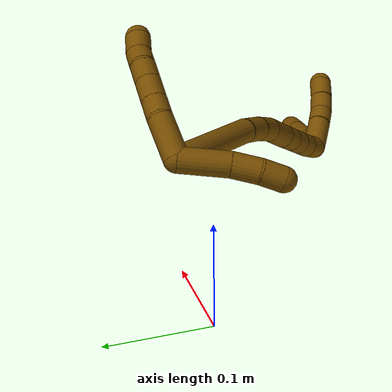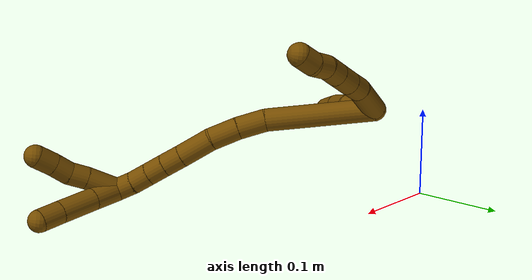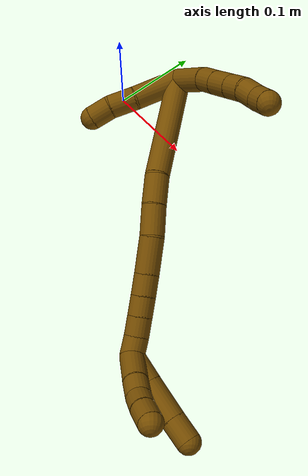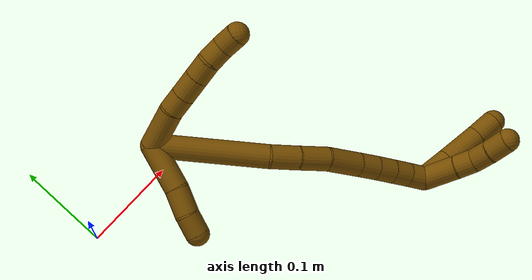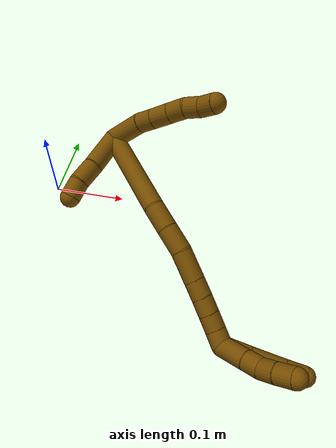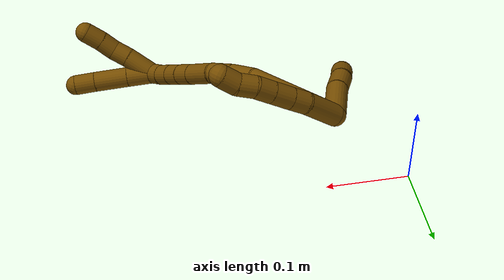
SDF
<sdf version="1.7">
 <world name="default">
  <model name="12">
   <static>0</static>
   <link name="12">
    <collision name="collision-cylinder-e_1_2_8">
     <pose>-0.006753 0.016207 0.01424 -0.849918 -0.303343 0.138115</pose>
     <geometry><cylinder><radius>0.0125</radius><length>0.045213</length></cylinder></geometry>
     <surface>
      <friction><ode><mu>1.16</mu><mu2>1.16</mu2><slip1>0</slip1><slip2>0</slip2></ode></friction>
      <contact><ode><kp>1e+06</kp><kd>1</kd><max_vel>0</max_vel><min_depth>0.001</min_depth></ode></contact>
     </surface>
    </collision>
    <visual name="visual-cylinder-e_1_2_8">
     <pose>-0.006753 0.016207 0.01424 -0.849918 -0.303343 0.138115</pose>
     <geometry><cylinder><radius>0.0125</radius><length>0.045213</length></cylinder></geometry>
     <material><ambient>0.466667 0.301961 0 1</ambient></material>
    </visual>
    <collision name="collision-cylinder-e_2_8_9">
     <pose>-0.015135 0.038795 0.03604 -0.700953 -0.163194 0.059773</pose>
     <geometry><cylinder><radius>0.0125</radius><length>0.020052</length></cylinder></geometry>
     <surface>
      <friction><ode><mu>1.16</mu><mu2>1.16</mu2><slip1>0</slip1><slip2>0</slip2></ode></friction>
      <contact><ode><kp>1e+06</kp><kd>1</kd><max_vel>0</max_vel><min_depth>0.001</min_depth></ode></contact>
     </surface>
    </collision>
    <visual name="visual-cylinder-e_2_8_9">
     <pose>-0.015135 0.038795 0.03604 -0.700953 -0.163194 0.059773</pose>
     <geometry><cylinder><radius>0.0125</radius><length>0.020052</length></cylinder></geometry>
     <material><ambient>0.466667 0.301961 0 1</ambient></material>
    </visual>
    <collision name="collision-cylinder-e_3_9_10">
     <pose>-0.018936 0.052826 0.052553 -0.707172 -0.182411 0.067489</pose>
     <geometry><cylinder><radius>0.0125</radius><length>0.023949</length></cylinder></geometry>
     <surface>
      <friction><ode><mu>1.16</mu><mu2>1.16</mu2><slip1>0</slip1><slip2>0</slip2></ode></friction>
      <contact><ode><kp>1e+06</kp><kd>1</kd><max_vel>0</max_vel><min_depth>0.001</min_depth></ode></contact>
     </surface>
    </collision>
    <visual name="visual-cylinder-e_3_9_10">
     <pose>-0.018936 0.052826 0.052553 -0.707172 -0.182411 0.067489</pose>
     <geometry><cylinder><radius>0.0125</radius><length>0.023949</length></cylinder></geometry>
     <material><ambient>0.466667 0.301961 0 1</ambient></material>
    </visual>
    <collision name="collision-cylinder-e_4_10_11">
     <pose>-0.02295 0.067021 0.069186 -0.705635 -0.180595 0.066656</pose>
     <geometry><cylinder><radius>0.0125</radius><length>0.020516</length></cylinder></geometry>
     <surface>
      <friction><ode><mu>1.16</mu><mu2>1.16</mu2><slip1>0</slip1><slip2>0</slip2></ode></friction>
      <contact><ode><kp>1e+06</kp><kd>1</kd><max_vel>0</max_vel><min_depth>0.001</min_depth></ode></contact>
     </surface>
    </collision>
    <visual name="visual-cylinder-e_4_10_11">
     <pose>-0.02295 0.067021 0.069186 -0.705635 -0.180595 0.066656</pose>
     <geometry><cylinder><radius>0.0125</radius><length>0.020516</length></cylinder></geometry>
     <material><ambient>0.466667 0.301961 0 1</ambient></material>
    </visual>
    <collision name="collision-cylinder-e_5_11_12">
     <pose>-0.02446 0.079138 0.085207 -0.589113 0.033178 -0.010067</pose>
     <geometry><cylinder><radius>0.0125</radius><length>0.020071</length></cylinder></geometry>
     <surface>
      <friction><ode><mu>1.16</mu><mu2>1.16</mu2><slip1>0</slip1><slip2>0</slip2></ode></friction>
      <contact><ode><kp>1e+06</kp><kd>1</kd><max_vel>0</max_vel><min_depth>0.001</min_depth></ode></contact>
     </surface>
    </collision>
    <visual name="visual-cylinder-e_5_11_12">
     <pose>-0.02446 0.079138 0.085207 -0.589113 0.033178 -0.010067</pose>
     <geometry><cylinder><radius>0.0125</radius><length>0.020071</length></cylinder></geometry>
     <material><ambient>0.466667 0.301961 0 1</ambient></material>
    </visual>
    <collision name="collision-cylinder-e_6_12_6">
     <pose>-0.026908 0.089533 0.101973 -0.519751 -0.278921 0.074612</pose>
     <geometry><cylinder><radius>0.0125</radius><length>0.020199</length></cylinder></geometry>
     <surface>
      <friction><ode><mu>1.16</mu><mu2>1.16</mu2><slip1>0</slip1><slip2>0</slip2></ode></friction>
      <contact><ode><kp>1e+06</kp><kd>1</kd><max_vel>0</max_vel><min_depth>0.001</min_depth></ode></contact>
     </surface>
    </collision>
    <visual name="visual-cylinder-e_6_12_6">
     <pose>-0.026908 0.089533 0.101973 -0.519751 -0.278921 0.074612</pose>
     <geometry><cylinder><radius>0.0125</radius><length>0.020199</length></cylinder></geometry>
     <material><ambient>0.466667 0.301961 0 1</ambient></material>
    </visual>
    <collision name="collision-cylinder-e_1_2_13">
     <pose>-0.004992 -0.023096 0.007778 1.24595 -0.202048 -0.145392</pose>
     <geometry><cylinder><radius>0.0125</radius><length>0.049752</length></cylinder></geometry>
     <surface>
      <friction><ode><mu>1.16</mu><mu2>1.16</mu2><slip1>0</slip1><slip2>0</slip2></ode></friction>
      <contact><ode><kp>1e+06</kp><kd>1</kd><max_vel>0</max_vel><min_depth>0.001</min_depth></ode></contact>
     </surface>
    </collision>
    <visual name="visual-cylinder-e_1_2_13">
     <pose>-0.004992 -0.023096 0.007778 1.24595 -0.202048 -0.145392</pose>
     <geometry><cylinder><radius>0.0125</radius><length>0.049752</length></cylinder></geometry>
     <material><ambient>0.466667 0.301961 0 1</ambient></material>
    </visual>
    <collision name="collision-cylinder-e_2_13_14">
     <pose>-0.01189 -0.059647 0.018008 1.39058 -0.138425 -0.115539</pose>
     <geometry><cylinder><radius>0.0125</radius><length>0.027619</length></cylinder></geometry>
     <surface>
      <friction><ode><mu>1.16</mu><mu2>1.16</mu2><slip1>0</slip1><slip2>0</slip2></ode></friction>
      <contact><ode><kp>1e+06</kp><kd>1</kd><max_vel>0</max_vel><min_depth>0.001</min_depth></ode></contact>
     </surface>
    </collision>
    <visual name="visual-cylinder-e_2_13_14">
     <pose>-0.01189 -0.059647 0.018008 1.39058 -0.138425 -0.115539</pose>
     <geometry><cylinder><radius>0.0125</radius><length>0.027619</length></cylinder></geometry>
     <material><ambient>0.466667 0.301961 0 1</ambient></material>
    </visual>
    <collision name="collision-cylinder-e_3_14_5">
     <pose>-0.013245 -0.084042 0.023294 1.31724 0.048647 0.03765</pose>
     <geometry><cylinder><radius>0.0125</radius><length>0.022629</length></cylinder></geometry>
     <surface>
      <friction><ode><mu>1.16</mu><mu2>1.16</mu2><slip1>0</slip1><slip2>0</slip2></ode></friction>
      <contact><ode><kp>1e+06</kp><kd>1</kd><max_vel>0</max_vel><min_depth>0.001</min_depth></ode></contact>
     </surface>
    </collision>
    <visual name="visual-cylinder-e_3_14_5">
     <pose>-0.013245 -0.084042 0.023294 1.31724 0.048647 0.03765</pose>
     <geometry><cylinder><radius>0.0125</radius><length>0.022629</length></cylinder></geometry>
     <material><ambient>0.466667 0.301961 0 1</ambient></material>
    </visual>
    <collision name="collision-cylinder-e_1_2_15">
     <pose>0.007992 -0.018708 0.055223 0.326643 0.13622 0.022481</pose>
     <geometry><cylinder><radius>0.0125</radius><length>0.117702</length></cylinder></geometry>
     <surface>
      <friction><ode><mu>1.16</mu><mu2>1.16</mu2><slip1>0</slip1><slip2>0</slip2></ode></friction>
      <contact><ode><kp>1e+06</kp><kd>1</kd><max_vel>0</max_vel><min_depth>0.001</min_depth></ode></contact>
     </surface>
    </collision>
    <visual name="visual-cylinder-e_1_2_15">
     <pose>0.007992 -0.018708 0.055223 0.326643 0.13622 0.022481</pose>
     <geometry><cylinder><radius>0.0125</radius><length>0.117702</length></cylinder></geometry>
     <material><ambient>0.466667 0.301961 0 1</ambient></material>
    </visual>
    <collision name="collision-cylinder-e_2_15_16">
     <pose>0.021052 -0.042011 0.124413 0.317827 0.331939 0.053679</pose>
     <geometry><cylinder><radius>0.0125</radius><length>0.031104</length></cylinder></geometry>
     <surface>
      <friction><ode><mu>1.16</mu><mu2>1.16</mu2><slip1>0</slip1><slip2>0</slip2></ode></friction>
      <contact><ode><kp>1e+06</kp><kd>1</kd><max_vel>0</max_vel><min_depth>0.001</min_depth></ode></contact>
     </surface>
    </collision>
    <visual name="visual-cylinder-e_2_15_16">
     <pose>0.021052 -0.042011 0.124413 0.317827 0.331939 0.053679</pose>
     <geometry><cylinder><radius>0.0125</radius><length>0.031104</length></cylinder></geometry>
     <material><ambient>0.466667 0.301961 0 1</ambient></material>
    </visual>
    <collision name="collision-cylinder-e_3_16_17">
     <pose>0.032702 -0.051178 0.151934 0.325323 0.431253 0.07186</pose>
     <geometry><cylinder><radius>0.0125</radius><length>0.031493</length></cylinder></geometry>
     <surface>
      <friction><ode><mu>1.16</mu><mu2>1.16</mu2><slip1>0</slip1><slip2>0</slip2></ode></friction>
      <contact><ode><kp>1e+06</kp><kd>1</kd><max_vel>0</max_vel><min_depth>0.001</min_depth></ode></contact>
     </surface>
    </collision>
    <visual name="visual-cylinder-e_3_16_17">
     <pose>0.032702 -0.051178 0.151934 0.325323 0.431253 0.07186</pose>
     <geometry><cylinder><radius>0.0125</radius><length>0.031493</length></cylinder></geometry>
     <material><ambient>0.466667 0.301961 0 1</ambient></material>
    </visual>
    <collision name="collision-cylinder-e_4_17_18">
     <pose>0.04877 -0.063407 0.179713 0.493811 0.53096 0.136849</pose>
     <geometry><cylinder><radius>0.0125</radius><length>0.037467</length></cylinder></geometry>
     <surface>
      <friction><ode><mu>1.16</mu><mu2>1.16</mu2><slip1>0</slip1><slip2>0</slip2></ode></friction>
      <contact><ode><kp>1e+06</kp><kd>1</kd><max_vel>0</max_vel><min_depth>0.001</min_depth></ode></contact>
     </surface>
    </collision>
    <visual name="visual-cylinder-e_4_17_18">
     <pose>0.04877 -0.063407 0.179713 0.493811 0.53096 0.136849</pose>
     <geometry><cylinder><radius>0.0125</radius><length>0.037467</length></cylinder></geometry>
     <material><ambient>0.466667 0.301961 0 1</ambient></material>
    </visual>
    <collision name="collision-cylinder-e_5_18_19">
     <pose>0.063576 -0.07559 0.202295 0.496322 0.51025 0.131977</pose>
     <geometry><cylinder><radius>0.0125</radius><length>0.021785</length></cylinder></geometry>
     <surface>
      <friction><ode><mu>1.16</mu><mu2>1.16</mu2><slip1>0</slip1><slip2>0</slip2></ode></friction>
      <contact><ode><kp>1e+06</kp><kd>1</kd><max_vel>0</max_vel><min_depth>0.001</min_depth></ode></contact>
     </surface>
    </collision>
    <visual name="visual-cylinder-e_5_18_19">
     <pose>0.063576 -0.07559 0.202295 0.496322 0.51025 0.131977</pose>
     <geometry><cylinder><radius>0.0125</radius><length>0.021785</length></cylinder></geometry>
     <material><ambient>0.466667 0.301961 0 1</ambient></material>
    </visual>
    <collision name="collision-cylinder-e_6_19_20">
     <pose>0.073893 -0.08451 0.218362 0.518049 0.512913 0.138747</pose>
     <geometry><cylinder><radius>0.0125</radius><length>0.020367</length></cylinder></geometry>
     <surface>
      <friction><ode><mu>1.16</mu><mu2>1.16</mu2><slip1>0</slip1><slip2>0</slip2></ode></friction>
      <contact><ode><kp>1e+06</kp><kd>1</kd><max_vel>0</max_vel><min_depth>0.001</min_depth></ode></contact>
     </surface>
    </collision>
    <visual name="visual-cylinder-e_6_19_20">
     <pose>0.073893 -0.08451 0.218362 0.518049 0.512913 0.138747</pose>
     <geometry><cylinder><radius>0.0125</radius><length>0.020367</length></cylinder></geometry>
     <material><ambient>0.466667 0.301961 0 1</ambient></material>
    </visual>
    <collision name="collision-cylinder-e_7_20_21">
     <pose>0.083799 -0.09325 0.233673 0.519374 0.510956 0.138564</pose>
     <geometry><cylinder><radius>0.0125</radius><length>0.020078</length></cylinder></geometry>
     <surface>
      <friction><ode><mu>1.16</mu><mu2>1.16</mu2><slip1>0</slip1><slip2>0</slip2></ode></friction>
      <contact><ode><kp>1e+06</kp><kd>1</kd><max_vel>0</max_vel><min_depth>0.001</min_depth></ode></contact>
     </surface>
    </collision>
    <visual name="visual-cylinder-e_7_20_21">
     <pose>0.083799 -0.09325 0.233673 0.519374 0.510956 0.138564</pose>
     <geometry><cylinder><radius>0.0125</radius><length>0.020078</length></cylinder></geometry>
     <material><ambient>0.466667 0.301961 0 1</ambient></material>
    </visual>
    <collision name="collision-cylinder-e_8_21_1">
     <pose>0.092702 -0.102104 0.249261 0.513875 0.410724 0.10935</pose>
     <geometry><cylinder><radius>0.0125</radius><length>0.020004</length></cylinder></geometry>
     <surface>
      <friction><ode><mu>1.16</mu><mu2>1.16</mu2><slip1>0</slip1><slip2>0</slip2></ode></friction>
      <contact><ode><kp>1e+06</kp><kd>1</kd><max_vel>0</max_vel><min_depth>0.001</min_depth></ode></contact>
     </surface>
    </collision>
    <visual name="visual-cylinder-e_8_21_1">
     <pose>0.092702 -0.102104 0.249261 0.513875 0.410724 0.10935</pose>
     <geometry><cylinder><radius>0.0125</radius><length>0.020004</length></cylinder></geometry>
     <material><ambient>0.466667 0.301961 0 1</ambient></material>
    </visual>
    <collision name="collision-cylinder-e_1_1_22">
     <pose>0.103465 -0.100882 0.270706 -0.402454 0.433434 -0.089765</pose>
     <geometry><cylinder><radius>0.0125</radius><length>0.032238</length></cylinder></geometry>
     <surface>
      <friction><ode><mu>1.16</mu><mu2>1.16</mu2><slip1>0</slip1><slip2>0</slip2></ode></friction>
      <contact><ode><kp>1e+06</kp><kd>1</kd><max_vel>0</max_vel><min_depth>0.001</min_depth></ode></contact>
     </surface>
    </collision>
    <visual name="visual-cylinder-e_1_1_22">
     <pose>0.103465 -0.100882 0.270706 -0.402454 0.433434 -0.089765</pose>
     <geometry><cylinder><radius>0.0125</radius><length>0.032238</length></cylinder></geometry>
     <material><ambient>0.466667 0.301961 0 1</ambient></material>
    </visual>
    <collision name="collision-cylinder-e_2_22_23">
     <pose>0.119151 -0.087416 0.301584 -0.417973 0.437533 -0.094233</pose>
     <geometry><cylinder><radius>0.0125</radius><length>0.042084</length></cylinder></geometry>
     <surface>
      <friction><ode><mu>1.16</mu><mu2>1.16</mu2><slip1>0</slip1><slip2>0</slip2></ode></friction>
      <contact><ode><kp>1e+06</kp><kd>1</kd><max_vel>0</max_vel><min_depth>0.001</min_depth></ode></contact>
     </surface>
    </collision>
    <visual name="visual-cylinder-e_2_22_23">
     <pose>0.119151 -0.087416 0.301584 -0.417973 0.437533 -0.094233</pose>
     <geometry><cylinder><radius>0.0125</radius><length>0.042084</length></cylinder></geometry>
     <material><ambient>0.466667 0.301961 0 1</ambient></material>
    </visual>
    <collision name="collision-cylinder-e_3_23_4">
     <pose>0.133579 -0.074648 0.32945 -0.44888 0.443783 -0.102915</pose>
     <geometry><cylinder><radius>0.0125</radius><length>0.025679</length></cylinder></geometry>
     <surface>
      <friction><ode><mu>1.16</mu><mu2>1.16</mu2><slip1>0</slip1><slip2>0</slip2></ode></friction>
      <contact><ode><kp>1e+06</kp><kd>1</kd><max_vel>0</max_vel><min_depth>0.001</min_depth></ode></contact>
     </surface>
    </collision>
    <visual name="visual-cylinder-e_3_23_4">
     <pose>0.133579 -0.074648 0.32945 -0.44888 0.443783 -0.102915</pose>
     <geometry><cylinder><radius>0.0125</radius><length>0.025679</length></cylinder></geometry>
     <material><ambient>0.466667 0.301961 0 1</ambient></material>
    </visual>
    <collision name="collision-cylinder-e_1_1_24">
     <pose>0.091973 -0.103247 0.274933 -0.187999 -0.256534 0.024318</pose>
     <geometry><cylinder><radius>0.0125</radius><length>0.037226</length></cylinder></geometry>
     <surface>
      <friction><ode><mu>1.16</mu><mu2>1.16</mu2><slip1>0</slip1><slip2>0</slip2></ode></friction>
      <contact><ode><kp>1e+06</kp><kd>1</kd><max_vel>0</max_vel><min_depth>0.001</min_depth></ode></contact>
     </surface>
    </collision>
    <visual name="visual-cylinder-e_1_1_24">
     <pose>0.091973 -0.103247 0.274933 -0.187999 -0.256534 0.024318</pose>
     <geometry><cylinder><radius>0.0125</radius><length>0.037226</length></cylinder></geometry>
     <material><ambient>0.466667 0.301961 0 1</ambient></material>
    </visual>
    <collision name="collision-cylinder-e_2_24_25">
     <pose>0.085599 -0.097947 0.302362 -0.196053 -0.164748 0.016238</pose>
     <geometry><cylinder><radius>0.0125</radius><length>0.020138</length></cylinder></geometry>
     <surface>
      <friction><ode><mu>1.16</mu><mu2>1.16</mu2><slip1>0</slip1><slip2>0</slip2></ode></friction>
      <contact><ode><kp>1e+06</kp><kd>1</kd><max_vel>0</max_vel><min_depth>0.001</min_depth></ode></contact>
     </surface>
    </collision>
    <visual name="visual-cylinder-e_2_24_25">
     <pose>0.085599 -0.097947 0.302362 -0.196053 -0.164748 0.016238</pose>
     <geometry><cylinder><radius>0.0125</radius><length>0.020138</length></cylinder></geometry>
     <material><ambient>0.466667 0.301961 0 1</ambient></material>
    </visual>
    <collision name="collision-cylinder-e_3_25_26">
     <pose>0.080214 -0.092457 0.320925 -0.383208 -0.37412 0.073399</pose>
     <geometry><cylinder><radius>0.0125</radius><length>0.020433</length></cylinder></geometry>
     <surface>
      <friction><ode><mu>1.16</mu><mu2>1.16</mu2><slip1>0</slip1><slip2>0</slip2></ode></friction>
      <contact><ode><kp>1e+06</kp><kd>1</kd><max_vel>0</max_vel><min_depth>0.001</min_depth></ode></contact>
     </surface>
    </collision>
    <visual name="visual-cylinder-e_3_25_26">
     <pose>0.080214 -0.092457 0.320925 -0.383208 -0.37412 0.073399</pose>
     <geometry><cylinder><radius>0.0125</radius><length>0.020433</length></cylinder></geometry>
     <material><ambient>0.466667 0.301961 0 1</ambient></material>
    </visual>
    <collision name="collision-cylinder-e_4_26_3">
     <pose>0.073355 -0.084439 0.339418 -0.432181 -0.285402 0.063059</pose>
     <geometry><cylinder><radius>0.0125</radius><length>0.022203</length></cylinder></geometry>
     <surface>
      <friction><ode><mu>1.16</mu><mu2>1.16</mu2><slip1>0</slip1><slip2>0</slip2></ode></friction>
      <contact><ode><kp>1e+06</kp><kd>1</kd><max_vel>0</max_vel><min_depth>0.001</min_depth></ode></contact>
     </surface>
    </collision>
    <visual name="visual-cylinder-e_4_26_3">
     <pose>0.073355 -0.084439 0.339418 -0.432181 -0.285402 0.063059</pose>
     <geometry><cylinder><radius>0.0125</radius><length>0.022203</length></cylinder></geometry>
     <material><ambient>0.466667 0.301961 0 1</ambient></material>
    </visual>
    <collision name="collision-sphere-3">
     <pose>0.070229 -0.079978 0.349091 0 -0 0</pose>
     <geometry><sphere><radius>0.0125</radius></sphere></geometry>
     <surface>
      <friction><ode><mu>1.16</mu><mu2>1.16</mu2><slip1>0</slip1><slip2>0</slip2></ode></friction>
      <contact><ode><kp>1e+06</kp><kd>1</kd><max_vel>0</max_vel><min_depth>0.001</min_depth></ode></contact>
     </surface>
    </collision>
    <visual name="visual-sphere-3">
     <pose>0.070229 -0.079978 0.349091 0 -0 0</pose>
     <geometry><sphere><radius>0.0125</radius></sphere></geometry>
     <material><ambient>0.466667 0.301961 0 1</ambient></material>
    </visual>
    <collision name="collision-sphere-26">
     <pose>0.07648 -0.088901 0.329745 0 -0 0</pose>
     <geometry><sphere><radius>0.0125</radius></sphere></geometry>
     <surface>
      <friction><ode><mu>1.16</mu><mu2>1.16</mu2><slip1>0</slip1><slip2>0</slip2></ode></friction>
      <contact><ode><kp>1e+06</kp><kd>1</kd><max_vel>0</max_vel><min_depth>0.001</min_depth></ode></contact>
     </surface>
    </collision>
    <visual name="visual-sphere-26">
     <pose>0.07648 -0.088901 0.329745 0 -0 0</pose>
     <geometry><sphere><radius>0.0125</radius></sphere></geometry>
     <material><ambient>0.466667 0.301961 0 1</ambient></material>
    </visual>
    <collision name="collision-sphere-25">
     <pose>0.083948 -0.096013 0.312105 0 -0 0</pose>
     <geometry><sphere><radius>0.0125</radius></sphere></geometry>
     <surface>
      <friction><ode><mu>1.16</mu><mu2>1.16</mu2><slip1>0</slip1><slip2>0</slip2></ode></friction>
      <contact><ode><kp>1e+06</kp><kd>1</kd><max_vel>0</max_vel><min_depth>0.001</min_depth></ode></contact>
     </surface>
    </collision>
    <visual name="visual-sphere-25">
     <pose>0.083948 -0.096013 0.312105 0 -0 0</pose>
     <geometry><sphere><radius>0.0125</radius></sphere></geometry>
     <material><ambient>0.466667 0.301961 0 1</ambient></material>
    </visual>
    <collision name="collision-sphere-24">
     <pose>0.08725 -0.099882 0.29262 0 -0 0</pose>
     <geometry><sphere><radius>0.0125</radius></sphere></geometry>
     <surface>
      <friction><ode><mu>1.16</mu><mu2>1.16</mu2><slip1>0</slip1><slip2>0</slip2></ode></friction>
      <contact><ode><kp>1e+06</kp><kd>1</kd><max_vel>0</max_vel><min_depth>0.001</min_depth></ode></contact>
     </surface>
    </collision>
    <visual name="visual-sphere-24">
     <pose>0.08725 -0.099882 0.29262 0 -0 0</pose>
     <geometry><sphere><radius>0.0125</radius></sphere></geometry>
     <material><ambient>0.466667 0.301961 0 1</ambient></material>
    </visual>
    <collision name="collision-sphere-4">
     <pose>0.139092 -0.069616 0.339897 0 -0 0</pose>
     <geometry><sphere><radius>0.0125</radius></sphere></geometry>
     <surface>
      <friction><ode><mu>1.16</mu><mu2>1.16</mu2><slip1>0</slip1><slip2>0</slip2></ode></friction>
      <contact><ode><kp>1e+06</kp><kd>1</kd><max_vel>0</max_vel><min_depth>0.001</min_depth></ode></contact>
     </surface>
    </collision>
    <visual name="visual-sphere-4">
     <pose>0.139092 -0.069616 0.339897 0 -0 0</pose>
     <geometry><sphere><radius>0.0125</radius></sphere></geometry>
     <material><ambient>0.466667 0.301961 0 1</ambient></material>
    </visual>
    <collision name="collision-sphere-23">
     <pose>0.128066 -0.07968 0.319003 0 -0 0</pose>
     <geometry><sphere><radius>0.0125</radius></sphere></geometry>
     <surface>
      <friction><ode><mu>1.16</mu><mu2>1.16</mu2><slip1>0</slip1><slip2>0</slip2></ode></friction>
      <contact><ode><kp>1e+06</kp><kd>1</kd><max_vel>0</max_vel><min_depth>0.001</min_depth></ode></contact>
     </surface>
    </collision>
    <visual name="visual-sphere-23">
     <pose>0.128066 -0.07968 0.319003 0 -0 0</pose>
     <geometry><sphere><radius>0.0125</radius></sphere></geometry>
     <material><ambient>0.466667 0.301961 0 1</ambient></material>
    </visual>
    <collision name="collision-sphere-22">
     <pose>0.110235 -0.095153 0.284166 0 -0 0</pose>
     <geometry><sphere><radius>0.0125</radius></sphere></geometry>
     <surface>
      <friction><ode><mu>1.16</mu><mu2>1.16</mu2><slip1>0</slip1><slip2>0</slip2></ode></friction>
      <contact><ode><kp>1e+06</kp><kd>1</kd><max_vel>0</max_vel><min_depth>0.001</min_depth></ode></contact>
     </surface>
    </collision>
    <visual name="visual-sphere-22">
     <pose>0.110235 -0.095153 0.284166 0 -0 0</pose>
     <geometry><sphere><radius>0.0125</radius></sphere></geometry>
     <material><ambient>0.466667 0.301961 0 1</ambient></material>
    </visual>
    <collision name="collision-sphere-1">
     <pose>0.096696 -0.106612 0.257247 0 -0 0</pose>
     <geometry><sphere><radius>0.0125</radius></sphere></geometry>
     <surface>
      <friction><ode><mu>1.16</mu><mu2>1.16</mu2><slip1>0</slip1><slip2>0</slip2></ode></friction>
      <contact><ode><kp>1e+06</kp><kd>1</kd><max_vel>0</max_vel><min_depth>0.001</min_depth></ode></contact>
     </surface>
    </collision>
    <visual name="visual-sphere-1">
     <pose>0.096696 -0.106612 0.257247 0 -0 0</pose>
     <geometry><sphere><radius>0.0125</radius></sphere></geometry>
     <material><ambient>0.466667 0.301961 0 1</ambient></material>
    </visual>
    <collision name="collision-sphere-21">
     <pose>0.088708 -0.097597 0.241275 0 -0 0</pose>
     <geometry><sphere><radius>0.0125</radius></sphere></geometry>
     <surface>
      <friction><ode><mu>1.16</mu><mu2>1.16</mu2><slip1>0</slip1><slip2>0</slip2></ode></friction>
      <contact><ode><kp>1e+06</kp><kd>1</kd><max_vel>0</max_vel><min_depth>0.001</min_depth></ode></contact>
     </surface>
    </collision>
    <visual name="visual-sphere-21">
     <pose>0.088708 -0.097597 0.241275 0 -0 0</pose>
     <geometry><sphere><radius>0.0125</radius></sphere></geometry>
     <material><ambient>0.466667 0.301961 0 1</ambient></material>
    </visual>
    <collision name="collision-sphere-12">
     <pose>-0.024127 0.084711 0.093546 0 -0 0</pose>
     <geometry><sphere><radius>0.0125</radius></sphere></geometry>
     <surface>
      <friction><ode><mu>1.16</mu><mu2>1.16</mu2><slip1>0</slip1><slip2>0</slip2></ode></friction>
      <contact><ode><kp>1e+06</kp><kd>1</kd><max_vel>0</max_vel><min_depth>0.001</min_depth></ode></contact>
     </surface>
    </collision>
    <visual name="visual-sphere-12">
     <pose>-0.024127 0.084711 0.093546 0 -0 0</pose>
     <geometry><sphere><radius>0.0125</radius></sphere></geometry>
     <material><ambient>0.466667 0.301961 0 1</ambient></material>
    </visual>
    <collision name="collision-sphere-11">
     <pose>-0.024793 0.073565 0.076868 0 -0 0</pose>
     <geometry><sphere><radius>0.0125</radius></sphere></geometry>
     <surface>
      <friction><ode><mu>1.16</mu><mu2>1.16</mu2><slip1>0</slip1><slip2>0</slip2></ode></friction>
      <contact><ode><kp>1e+06</kp><kd>1</kd><max_vel>0</max_vel><min_depth>0.001</min_depth></ode></contact>
     </surface>
    </collision>
    <visual name="visual-sphere-11">
     <pose>-0.024793 0.073565 0.076868 0 -0 0</pose>
     <geometry><sphere><radius>0.0125</radius></sphere></geometry>
     <material><ambient>0.466667 0.301961 0 1</ambient></material>
    </visual>
    <collision name="collision-sphere-10">
     <pose>-0.021108 0.060476 0.061505 0 -0 0</pose>
     <geometry><sphere><radius>0.0125</radius></sphere></geometry>
     <surface>
      <friction><ode><mu>1.16</mu><mu2>1.16</mu2><slip1>0</slip1><slip2>0</slip2></ode></friction>
      <contact><ode><kp>1e+06</kp><kd>1</kd><max_vel>0</max_vel><min_depth>0.001</min_depth></ode></contact>
     </surface>
    </collision>
    <visual name="visual-sphere-10">
     <pose>-0.021108 0.060476 0.061505 0 -0 0</pose>
     <geometry><sphere><radius>0.0125</radius></sphere></geometry>
     <material><ambient>0.466667 0.301961 0 1</ambient></material>
    </visual>
    <collision name="collision-sphere-9">
     <pose>-0.016763 0.045175 0.043601 0 -0 0</pose>
     <geometry><sphere><radius>0.0125</radius></sphere></geometry>
     <surface>
      <friction><ode><mu>1.16</mu><mu2>1.16</mu2><slip1>0</slip1><slip2>0</slip2></ode></friction>
      <contact><ode><kp>1e+06</kp><kd>1</kd><max_vel>0</max_vel><min_depth>0.001</min_depth></ode></contact>
     </surface>
    </collision>
    <visual name="visual-sphere-9">
     <pose>-0.016763 0.045175 0.043601 0 -0 0</pose>
     <geometry><sphere><radius>0.0125</radius></sphere></geometry>
     <material><ambient>0.466667 0.301961 0 1</ambient></material>
    </visual>
    <collision name="collision-sphere-2">
     <geometry><sphere><radius>0.0125</radius></sphere></geometry>
     <surface>
      <friction><ode><mu>1.16</mu><mu2>1.16</mu2><slip1>0</slip1><slip2>0</slip2></ode></friction>
      <contact><ode><kp>1e+06</kp><kd>1</kd><max_vel>0</max_vel><min_depth>0.001</min_depth></ode></contact>
     </surface>
    </collision>
    <visual name="visual-sphere-2">
     <geometry><sphere><radius>0.0125</radius></sphere></geometry>
     <material><ambient>0.466667 0.301961 0 1</ambient></material>
    </visual>
    <collision name="collision-sphere-19">
     <pose>0.068896 -0.080116 0.210653 0 -0 0</pose>
     <geometry><sphere><radius>0.0125</radius></sphere></geometry>
     <surface>
      <friction><ode><mu>1.16</mu><mu2>1.16</mu2><slip1>0</slip1><slip2>0</slip2></ode></friction>
      <contact><ode><kp>1e+06</kp><kd>1</kd><max_vel>0</max_vel><min_depth>0.001</min_depth></ode></contact>
     </surface>
    </collision>
    <visual name="visual-sphere-19">
     <pose>0.068896 -0.080116 0.210653 0 -0 0</pose>
     <geometry><sphere><radius>0.0125</radius></sphere></geometry>
     <material><ambient>0.466667 0.301961 0 1</ambient></material>
    </visual>
    <collision name="collision-sphere-8">
     <pose>-0.013506 0.032414 0.02848 0 -0 0</pose>
     <geometry><sphere><radius>0.0125</radius></sphere></geometry>
     <surface>
      <friction><ode><mu>1.16</mu><mu2>1.16</mu2><slip1>0</slip1><slip2>0</slip2></ode></friction>
      <contact><ode><kp>1e+06</kp><kd>1</kd><max_vel>0</max_vel><min_depth>0.001</min_depth></ode></contact>
     </surface>
    </collision>
    <visual name="visual-sphere-8">
     <pose>-0.013506 0.032414 0.02848 0 -0 0</pose>
     <geometry><sphere><radius>0.0125</radius></sphere></geometry>
     <material><ambient>0.466667 0.301961 0 1</ambient></material>
    </visual>
    <collision name="collision-sphere-6">
     <pose>-0.029688 0.094355 0.1104 0 -0 0</pose>
     <geometry><sphere><radius>0.0125</radius></sphere></geometry>
     <surface>
      <friction><ode><mu>1.16</mu><mu2>1.16</mu2><slip1>0</slip1><slip2>0</slip2></ode></friction>
      <contact><ode><kp>1e+06</kp><kd>1</kd><max_vel>0</max_vel><min_depth>0.001</min_depth></ode></contact>
     </surface>
    </collision>
    <visual name="visual-sphere-6">
     <pose>-0.029688 0.094355 0.1104 0 -0 0</pose>
     <geometry><sphere><radius>0.0125</radius></sphere></geometry>
     <material><ambient>0.466667 0.301961 0 1</ambient></material>
    </visual>
    <collision name="collision-sphere-13">
     <pose>-0.009984 -0.046191 0.015556 0 -0 0</pose>
     <geometry><sphere><radius>0.0125</radius></sphere></geometry>
     <surface>
      <friction><ode><mu>1.16</mu><mu2>1.16</mu2><slip1>0</slip1><slip2>0</slip2></ode></friction>
      <contact><ode><kp>1e+06</kp><kd>1</kd><max_vel>0</max_vel><min_depth>0.001</min_depth></ode></contact>
     </surface>
    </collision>
    <visual name="visual-sphere-13">
     <pose>-0.009984 -0.046191 0.015556 0 -0 0</pose>
     <geometry><sphere><radius>0.0125</radius></sphere></geometry>
     <material><ambient>0.466667 0.301961 0 1</ambient></material>
    </visual>
    <collision name="collision-sphere-14">
     <pose>-0.013795 -0.073103 0.020459 0 -0 0</pose>
     <geometry><sphere><radius>0.0125</radius></sphere></geometry>
     <surface>
      <friction><ode><mu>1.16</mu><mu2>1.16</mu2><slip1>0</slip1><slip2>0</slip2></ode></friction>
      <contact><ode><kp>1e+06</kp><kd>1</kd><max_vel>0</max_vel><min_depth>0.001</min_depth></ode></contact>
     </surface>
    </collision>
    <visual name="visual-sphere-14">
     <pose>-0.013795 -0.073103 0.020459 0 -0 0</pose>
     <geometry><sphere><radius>0.0125</radius></sphere></geometry>
     <material><ambient>0.466667 0.301961 0 1</ambient></material>
    </visual>
    <collision name="collision-sphere-5">
     <pose>-0.012695 -0.094982 0.026129 0 -0 0</pose>
     <geometry><sphere><radius>0.0125</radius></sphere></geometry>
     <surface>
      <friction><ode><mu>1.16</mu><mu2>1.16</mu2><slip1>0</slip1><slip2>0</slip2></ode></friction>
      <contact><ode><kp>1e+06</kp><kd>1</kd><max_vel>0</max_vel><min_depth>0.001</min_depth></ode></contact>
     </surface>
    </collision>
    <visual name="visual-sphere-5">
     <pose>-0.012695 -0.094982 0.026129 0 -0 0</pose>
     <geometry><sphere><radius>0.0125</radius></sphere></geometry>
     <material><ambient>0.466667 0.301961 0 1</ambient></material>
    </visual>
    <collision name="collision-sphere-15">
     <pose>0.015984 -0.037417 0.110446 0 -0 0</pose>
     <geometry><sphere><radius>0.0125</radius></sphere></geometry>
     <surface>
      <friction><ode><mu>1.16</mu><mu2>1.16</mu2><slip1>0</slip1><slip2>0</slip2></ode></friction>
      <contact><ode><kp>1e+06</kp><kd>1</kd><max_vel>0</max_vel><min_depth>0.001</min_depth></ode></contact>
     </surface>
    </collision>
    <visual name="visual-sphere-15">
     <pose>0.015984 -0.037417 0.110446 0 -0 0</pose>
     <geometry><sphere><radius>0.0125</radius></sphere></geometry>
     <material><ambient>0.466667 0.301961 0 1</ambient></material>
    </visual>
    <collision name="collision-sphere-16">
     <pose>0.02612 -0.046606 0.138379 0 -0 0</pose>
     <geometry><sphere><radius>0.0125</radius></sphere></geometry>
     <surface>
      <friction><ode><mu>1.16</mu><mu2>1.16</mu2><slip1>0</slip1><slip2>0</slip2></ode></friction>
      <contact><ode><kp>1e+06</kp><kd>1</kd><max_vel>0</max_vel><min_depth>0.001</min_depth></ode></contact>
     </surface>
    </collision>
    <visual name="visual-sphere-16">
     <pose>0.02612 -0.046606 0.138379 0 -0 0</pose>
     <geometry><sphere><radius>0.0125</radius></sphere></geometry>
     <material><ambient>0.466667 0.301961 0 1</ambient></material>
    </visual>
    <collision name="collision-sphere-17">
     <pose>0.039284 -0.05575 0.165488 0 -0 0</pose>
     <geometry><sphere><radius>0.0125</radius></sphere></geometry>
     <surface>
      <friction><ode><mu>1.16</mu><mu2>1.16</mu2><slip1>0</slip1><slip2>0</slip2></ode></friction>
      <contact><ode><kp>1e+06</kp><kd>1</kd><max_vel>0</max_vel><min_depth>0.001</min_depth></ode></contact>
     </surface>
    </collision>
    <visual name="visual-sphere-17">
     <pose>0.039284 -0.05575 0.165488 0 -0 0</pose>
     <geometry><sphere><radius>0.0125</radius></sphere></geometry>
     <material><ambient>0.466667 0.301961 0 1</ambient></material>
    </visual>
    <collision name="collision-sphere-18">
     <pose>0.058256 -0.071064 0.193937 0 -0 0</pose>
     <geometry><sphere><radius>0.0125</radius></sphere></geometry>
     <surface>
      <friction><ode><mu>1.16</mu><mu2>1.16</mu2><slip1>0</slip1><slip2>0</slip2></ode></friction>
      <contact><ode><kp>1e+06</kp><kd>1</kd><max_vel>0</max_vel><min_depth>0.001</min_depth></ode></contact>
     </surface>
    </collision>
    <visual name="visual-sphere-18">
     <pose>0.058256 -0.071064 0.193937 0 -0 0</pose>
     <geometry><sphere><radius>0.0125</radius></sphere></geometry>
     <material><ambient>0.466667 0.301961 0 1</ambient></material>
    </visual>
    <collision name="collision-sphere-20">
     <pose>0.07889 -0.088904 0.226071 0 -0 0</pose>
     <geometry><sphere><radius>0.0125</radius></sphere></geometry>
     <surface>
      <friction><ode><mu>1.16</mu><mu2>1.16</mu2><slip1>0</slip1><slip2>0</slip2></ode></friction>
      <contact><ode><kp>1e+06</kp><kd>1</kd><max_vel>0</max_vel><min_depth>0.001</min_depth></ode></contact>
     </surface>
    </collision>
    <visual name="visual-sphere-20">
     <pose>0.07889 -0.088904 0.226071 0 -0 0</pose>
     <geometry><sphere><radius>0.0125</radius></sphere></geometry>
     <material><ambient>0.466667 0.301961 0 1</ambient></material>
    </visual>
    <inertial>
     <pose>0.036841 -0.040476 0.146589 0 -0 0</pose>
     <mass>0.75</mass>
     <inertia>
      <ixx>0.000222</ixx>
      <ixy>0</ixy>
      <ixz>0</ixz>
      <iyy>0.000193</iyy>
      <iyz>0</iyz>
      <izz>6.9e-05</izz>
     </inertia>
    </inertial>
   </link>
   <pose>0.09783 0.003394 0.117794 1.20596 1.17164 0.589559</pose>
  </model>
 </world>
</sdf>
